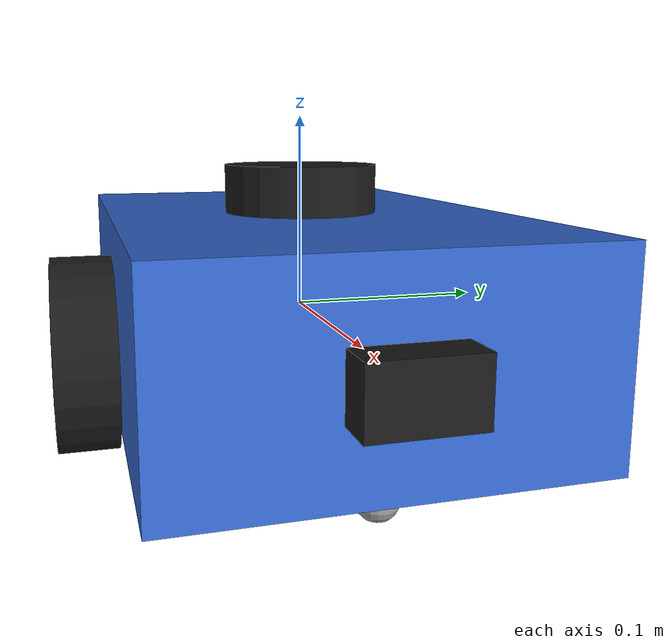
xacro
<?xml version="1.0"?>
<robot name="mi_robot" xmlns:xacro="http://www.ros.org/wiki/xacro">

  <xacro:property name="rueda_radio" value="0.05"/>
  <xacro:property name="rueda_ancho" value="0.03"/>
  <xacro:property name="separacion_ruedas" value="0.23"/>

  <link name="base_link">
    <visual>
      <geometry><box size="0.3 0.2 0.1"/></geometry>
      <material name="azul"><color rgba="0.2 0.4 0.8 1"/></material>
    </visual>
    <collision>
      <geometry><box size="0.3 0.2 0.1"/></geometry>
    </collision>
    <inertial>
      <mass value="1.0"/>
      <inertia ixx="0.01" ixy="0.0" ixz="0.0" iyy="0.01" iyz="0.0" izz="0.01"/>
    </inertial>
  </link>

  <xacro:macro name="rueda" params="prefijo y_signo">
    <link name="rueda_${prefijo}">
      <visual>
        <geometry><cylinder radius="${rueda_radio}" length="${rueda_ancho}"/></geometry>
        <material name="negro"><color rgba="0.1 0.1 0.1 1"/></material>
      </visual>
      <collision>
        <geometry><cylinder radius="${rueda_radio}" length="${rueda_ancho}"/></geometry>
      </collision>
      <inertial>
        <mass value="0.1"/>
        <inertia ixx="0.0005" ixy="0.0" ixz="0.0" iyy="0.0005" iyz="0.0" izz="0.0005"/>
      </inertial>
    </link>

    <joint name="joint_rueda_${prefijo}" type="continuous">
      <parent link="base_link"/>
      <child link="rueda_${prefijo}"/>
      <!-- rpy = -π/2: el eje z de la rueda queda apuntando a +y, así ω > 0 hace avanzar al robot en +x -->
      <origin xyz="0 ${y_signo * separacion_ruedas/2} -0.02" rpy="-1.5708 0 0"/>
      <axis xyz="0 0 1"/>
    </joint>
  </xacro:macro>
  <xacro:rueda prefijo="izq" y_signo="1"/>
  <xacro:rueda prefijo="der" y_signo="-1"/>

  <!-- Apoyos (caster) adelante y atrás: sin ellos el robot se inclina y
       arrastra la caja contra el piso, lo que perturba el control. -->
  <xacro:property name="caster_radio" value="0.01"/>
  <xacro:macro name="caster" params="prefijo x">
    <link name="caster_${prefijo}">
      <collision>
        <geometry><sphere radius="${caster_radio}"/></geometry>
      </collision>
      <visual>
        <geometry><sphere radius="${caster_radio}"/></geometry>
        <material name="gris"><color rgba="0.6 0.6 0.6 1"/></material>
      </visual>
      <inertial>
        <mass value="0.01"/>
        <inertia ixx="1e-6" ixy="0.0" ixz="0.0" iyy="1e-6" iyz="0.0" izz="1e-6"/>
      </inertial>
    </link>
    <joint name="joint_caster_${prefijo}" type="fixed">
      <parent link="base_link"/>
      <child link="caster_${prefijo}"/>
      <!-- z: el fondo de la esfera queda a la altura del fondo de las ruedas -->
      <origin xyz="${x} 0 ${-0.02 - rueda_radio + caster_radio}" rpy="0 0 0"/>
    </joint>
    <gazebo reference="caster_${prefijo}">
      <mu1>0.0</mu1>
      <mu2>0.0</mu2>
    </gazebo>
  </xacro:macro>
  <xacro:caster prefijo="del" x="0.12"/>
  <xacro:caster prefijo="tra" x="-0.12"/>

  <gazebo>
    <!-- El plugin DiffDrive hace internamente la cinemática inversa ω = W⁺ξ (ec. 22) -->
    <plugin filename="gz-sim-diff-drive-system" name="gz::sim::systems::DiffDrive">
      <left_joint>joint_rueda_izq</left_joint>
      <right_joint>joint_rueda_der</right_joint>
      <wheel_separation>${separacion_ruedas}</wheel_separation>
      <wheel_radius>${rueda_radio}</wheel_radius>
      <odom_publish_frequency>30</odom_publish_frequency>
      <topic>/cmd_vel</topic>
      <odom_topic>/odom</odom_topic>
      <tf_topic>/tf</tf_topic>
      <frame_id>odom</frame_id>
      <child_frame_id>base_link</child_frame_id>
    </plugin>
    <!-- Publica el estado de las ruedas (para que RViz las dibuje girando) -->
    <plugin filename="gz-sim-joint-state-publisher-system"
            name="gz::sim::systems::JointStatePublisher"/>
  </gazebo>

    <!-- =================== LiDAR =================== -->
  <link name="lidar_link">
    <visual>
      <geometry>
        <cylinder radius="0.04" length="0.05"/> <!-- Un cilindro pequeño -->
      </geometry>
      <material name="black">
        <color rgba="0.1 0.1 0.1 1"/>
      </material>
    </visual>
    <collision>
      <geometry>
        <cylinder radius="0.04" length="0.05"/>
      </geometry>
    </collision>
    <!-- Inercia mínima obligatoria para Gazebo -->
    <inertial>
      <mass value="0.1"/>
      <inertia ixx="0.0001" ixy="0" ixz="0" iyy="0.0001" iyz="0" izz="0.0001"/>
    </inertial>
  </link>

  <joint name="lidar_joint" type="fixed">
    <parent link="base_link"/> <!-- Asumo que tu chasis principal se llama base_link -->
    <child link="lidar_link"/>
    <!-- Ajusta la 'z' para que quede sobre el techo de tu cajita azul -->
    <!-- xyz: Adelante/Atras(x), Izquierda/Derecha(y), Arriba/Abajo(z) -->
    <origin xyz="0 0 0.05" rpy="0 0 0"/>
  </joint>

  <!-- =================== CÁMARA =================== -->
  <link name="camera_link">
    <visual>
      <geometry>
        <box size="0.02 0.05 0.03"/> <!-- Una cajita rectangular -->
      </geometry>
      <material name="black"/>
    </visual>
    <collision>
      <geometry>
        <box size="0.02 0.05 0.03"/>
      </geometry>
    </collision>
    <inertial>
      <mass value="0.05"/>
      <inertia ixx="0.0001" ixy="0" ixz="0" iyy="0.0001" iyz="0" izz="0.0001"/>
    </inertial>
  </link>

  <joint name="camera_joint" type="fixed">
    <parent link="base_link"/>
    <!-- Ajusta la 'x' para que quede en el frente del robot -->
    <origin xyz="0.16 0 0" rpy="0 0 0"/>
    <child link="camera_link"/>
  </joint>

    <gazebo reference="lidar_link">
    <sensor name="lidar" type="gpu_lidar">
      <always_on>true</always_on>
      <visualize>true</visualize> <!-- Verás los rayos azules en Gazebo -->
      <update_rate>10</update_rate>
      <topic>scan</topic>
      <gz_frame_id>lidar_link</gz_frame_id>
      <lidar>
        <scan>
          <horizontal>
            <!-- Rango: 360 grados (-PI a PI). Resolución justificada para el Notion -->
            <samples>360</samples>
            <resolution>1.000000</resolution>
            <min_angle>-3.14159</min_angle>
            <max_angle>3.14159</max_angle>
          </horizontal>
        </scan>
        <range>
          <min>0.15</min>
          <max>12.0</max>
          <resolution>0.015000</resolution>
        </range>
      </lidar>
    </sensor>
  </gazebo>

  <gazebo reference="camera_link">
    <sensor name="camera" type="camera">
      <always_on>true</always_on>
      <visualize>true</visualize>
      <update_rate>30.0</update_rate> <!-- 30 FPS como pide el taller -->
      <topic>image_raw</topic>
      <gz_frame_id>camera_link</gz_frame_id>
      <camera>
        <horizontal_fov>1.047</horizontal_fov> <!-- ~60 grados FOV -->
        <image>
          <width>640</width> <!-- Resolución 640x480 -->
          <height>480</height>
          <format>R8G8B8</format>
        </image>
        <clip>
          <near>0.6</near>
          <far>8.0</far>
        </clip>
      </camera>
    </sensor>
  </gazebo>
</robot>
